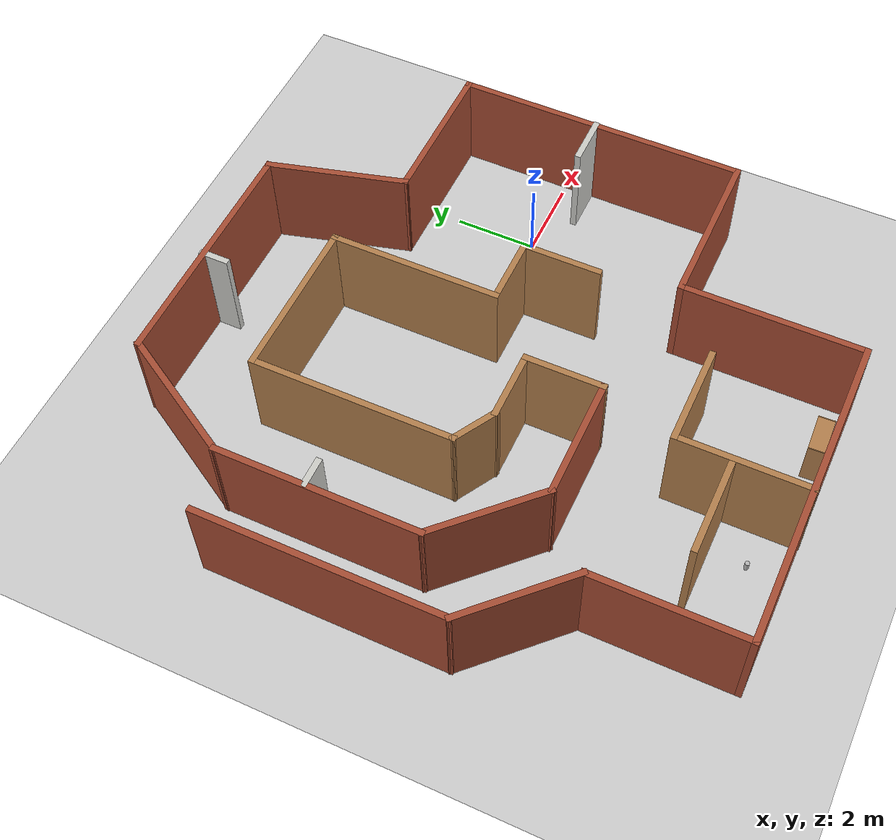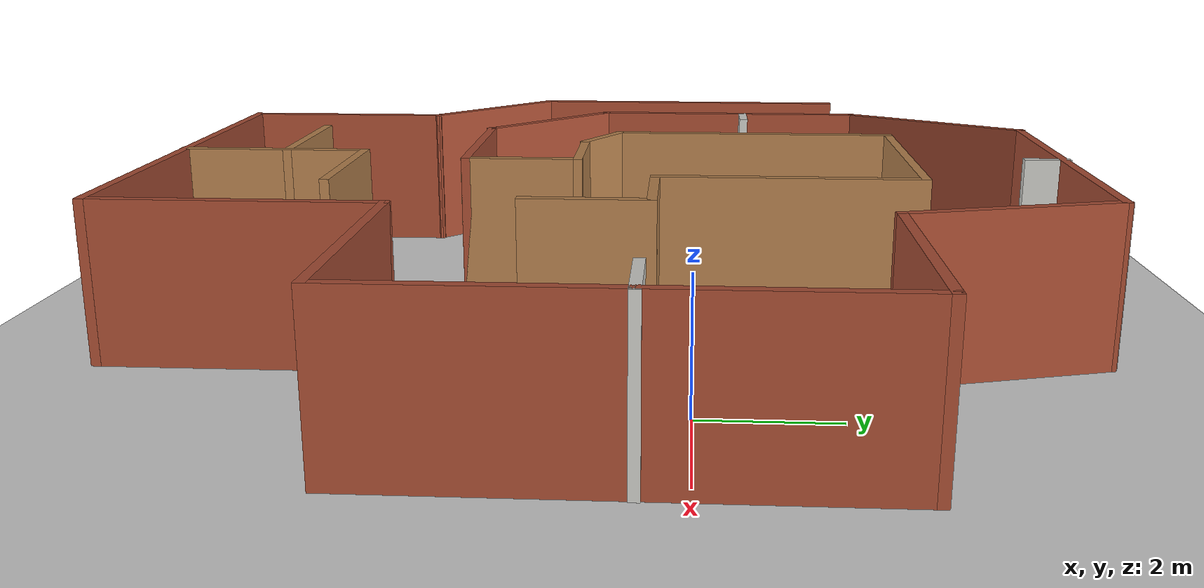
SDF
<sdf version="1.7">
 <world name="default">
  <light name="sun" type="directional">
   <pose>0 0 10 0 -0 0</pose>
   <diffuse>0.8 0.8 0.8 1</diffuse>
   <specular>0.2 0.2 0.2 1</specular>
   <attenuation>
    <range>1000</range>
    <constant>0.9</constant>
    <linear>0.01</linear>
    <quadratic>0.001</quadratic>
   </attenuation>
   <direction>-0.5 0.1 -0.9</direction>
   <spot><inner_angle>0</inner_angle><outer_angle>0</outer_angle><falloff>0</falloff></spot>
  </light>
  <model name="ground_plane">
   <static>1</static>
   <link name="link">
    <collision name="collision">
     <geometry><plane><normal>0 0 1</normal><size>100 100</size></plane></geometry>
     <surface>
      <contact><collide_bitmask>65535</collide_bitmask></contact>
      <friction><ode><mu>100</mu><mu2>50</mu2></ode></friction>
     </surface>
    </collision>
    <visual name="visual">
     <cast_shadows>0</cast_shadows>
     <geometry><plane><normal>0 0 1</normal><size>100 100</size></plane></geometry>
     <material>
      <script><uri>file://media/materials/scripts/gazebo.material</uri><name>Gazebo/Grey</name></script>
     </material>
    </visual>
   </link>
  </model>
  <gravity>0 0 -9.8</gravity>
  <magnetic_field>6e-06 2.3e-05 -4.2e-05</magnetic_field>
  <atmosphere type="adiabatic"/>
  <physics type="ode">
   <max_step_size>0.001</max_step_size>
   <real_time_factor>1</real_time_factor>
   <real_time_update_rate>1000</real_time_update_rate>
  </physics>
  <scene><ambient>0.4 0.4 0.4 1</ambient><background>0.7 0.7 0.7 1</background><shadows>1</shadows></scene>
  <spherical_coordinates>
   <surface_model>EARTH_WGS84</surface_model>
   <latitude_deg>0</latitude_deg>
   <longitude_deg>0</longitude_deg>
   <elevation>0</elevation>
   <heading_deg>0</heading_deg>
  </spherical_coordinates>
  <model name="my_map">
   <pose>-4.45693 -1.30853 0 0 -0 0</pose>
   <link name="Wall_0">
    <collision name="Wall_0_Collision">
     <geometry><box><size>4 0.15 2.5</size></box></geometry>
     <pose>0 0 1.25 0 -0 0</pose>
    </collision>
    <visual name="Wall_0_Visual">
     <pose>0 0 1.25 0 -0 0</pose>
     <geometry><box><size>4 0.15 2.5</size></box></geometry>
     <material>
      <script><uri>file://media/materials/scripts/gazebo.material</uri><name>Gazebo/Bricks</name></script>
      <ambient>0.760784 0.662745 0.627451 1</ambient>
     </material>
     <meta><layer>0</layer></meta>
    </visual>
    <pose>4.81193 -3.00147 0 0 -0 0</pose>
   </link>
   <link name="Wall_1">
    <collision name="Wall_1_Collision">
     <geometry><box><size>7.25 0.15 2.5</size></box></geometry>
     <pose>0 0 1.25 0 -0 0</pose>
    </collision>
    <visual name="Wall_1_Visual">
     <pose>0 0 1.25 0 -0 0</pose>
     <geometry><box><size>7.25 0.15 2.5</size></box></geometry>
     <material>
      <script><uri>file://media/materials/scripts/gazebo.material</uri><name>Gazebo/Bricks</name></script>
      <ambient>0.921569 0.807843 0.615686 1</ambient>
     </material>
     <meta><layer>0</layer></meta>
    </visual>
    <pose>6.73693 0.548534 0 0 -0 1.5708</pose>
   </link>
   <link name="Wall_10">
    <collision name="Wall_10_Collision">
     <geometry><box><size>1.75 0.15 2.5</size></box></geometry>
     <pose>0 0 1.25 0 -0 0</pose>
    </collision>
    <visual name="Wall_10_Visual">
     <pose>0 0 1.25 0 -0 0</pose>
     <geometry><box><size>1.75 0.15 2.5</size></box></geometry>
     <material>
      <script><uri>file://media/materials/scripts/gazebo.material</uri><name>Gazebo/Wood</name></script>
      <ambient>1 1 1 1</ambient>
     </material>
     <meta><layer>0</layer></meta>
    </visual>
    <pose>-1.18986 -0.582054 0 0 -0 3.14159</pose>
   </link>
   <link name="Wall_11">
    <collision name="Wall_11_Collision">
     <geometry><box><size>1.25 0.15 2.5</size></box></geometry>
     <pose>0 0 1.25 0 -0 0</pose>
    </collision>
    <visual name="Wall_11_Visual">
     <pose>0 0 1.25 0 -0 0</pose>
     <geometry><box><size>1.25 0.15 2.5</size></box></geometry>
     <material>
      <script><uri>file://media/materials/scripts/gazebo.material</uri><name>Gazebo/Wood</name></script>
      <ambient>1 1 1 1</ambient>
     </material>
     <meta><layer>0</layer></meta>
    </visual>
    <pose>-2.46618 -0.307054 0 0 -0 2.61799</pose>
   </link>
   <link name="Wall_12">
    <collision name="Wall_12_Collision">
     <geometry><box><size>5 0.15 2.5</size></box></geometry>
     <pose>0 0 1.25 0 -0 0</pose>
    </collision>
    <visual name="Wall_12_Visual">
     <pose>0 0 1.25 0 -0 0</pose>
     <geometry><box><size>5 0.15 2.5</size></box></geometry>
     <material>
      <script><uri>file://media/materials/scripts/gazebo.material</uri><name>Gazebo/Wood</name></script>
      <ambient>1 1 1 1</ambient>
     </material>
     <meta><layer>0</layer></meta>
    </visual>
    <pose>-2.94249 2.39295 0 0 -0 1.5708</pose>
   </link>
   <link name="Wall_13">
    <collision name="Wall_13_Collision">
     <geometry><box><size>4 0.15 2.5</size></box></geometry>
     <pose>0 0 1.25 0 -0 0</pose>
    </collision>
    <visual name="Wall_13_Visual">
     <pose>0 0 1.25 0 -0 0</pose>
     <geometry><box><size>4 0.15 2.5</size></box></geometry>
     <material>
      <script><uri>file://media/materials/scripts/gazebo.material</uri><name>Gazebo/Wood</name></script>
      <ambient>1 1 1 1</ambient>
     </material>
     <meta><layer>0</layer></meta>
    </visual>
    <pose>-1.01749 4.81795 0 0 -0 0</pose>
   </link>
   <link name="Wall_14">
    <collision name="Wall_14_Collision">
     <geometry><box><size>4.25 0.15 2.5</size></box></geometry>
     <pose>0 0 1.25 0 -0 0</pose>
    </collision>
    <visual name="Wall_14_Visual">
     <pose>0 0 1.25 0 -0 0</pose>
     <geometry><box><size>4.25 0.15 2.5</size></box></geometry>
     <material>
      <script><uri>file://media/materials/scripts/gazebo.material</uri><name>Gazebo/Wood</name></script>
      <ambient>1 1 1 1</ambient>
     </material>
     <meta><layer>0</layer></meta>
    </visual>
    <pose>0.907509 2.76795 0 0 -0 -1.5708</pose>
   </link>
   <link name="Wall_15">
    <collision name="Wall_15_Collision">
     <geometry><box><size>1.75 0.15 2.5</size></box></geometry>
     <pose>0 0 1.25 0 -0 0</pose>
    </collision>
    <visual name="Wall_15_Visual">
     <pose>0 0 1.25 0 -0 0</pose>
     <geometry><box><size>1.75 0.15 2.5</size></box></geometry>
     <material>
      <script><uri>file://media/materials/scripts/gazebo.material</uri><name>Gazebo/Wood</name></script>
      <ambient>1 1 1 1</ambient>
     </material>
     <meta><layer>0</layer></meta>
    </visual>
    <pose>1.70751 0.717946 0 0 -0 0</pose>
   </link>
   <link name="Wall_16">
    <collision name="Wall_16_Collision">
     <geometry><box><size>2 0.15 2.5</size></box></geometry>
     <pose>0 0 1.25 0 -0 0</pose>
    </collision>
    <visual name="Wall_16_Visual">
     <pose>0 0 1.25 0 -0 0</pose>
     <geometry><box><size>2 0.15 2.5</size></box></geometry>
     <material>
      <script><uri>file://media/materials/scripts/gazebo.material</uri><name>Gazebo/Wood</name></script>
      <ambient>1 1 1 1</ambient>
     </material>
     <meta><layer>0</layer></meta>
    </visual>
    <pose>2.50751 -0.207054 0 0 -0 -1.5708</pose>
   </link>
   <link name="Wall_2">
    <collision name="Wall_2_Collision">
     <geometry><box><size>3.75 0.15 2.5</size></box></geometry>
     <pose>0 0 1.25 0 -0 0</pose>
    </collision>
    <visual name="Wall_2_Visual">
     <pose>0 0 1.25 0 -0 0</pose>
     <geometry><box><size>3.75 0.15 2.5</size></box></geometry>
     <material>
      <script><uri>file://media/materials/scripts/gazebo.material</uri><name>Gazebo/Bricks</name></script>
      <ambient>0.760784 0.662745 0.627451 1</ambient>
     </material>
     <meta><layer>0</layer></meta>
    </visual>
    <pose>4.93693 4.09853 0 0 -0 3.14159</pose>
   </link>
   <link name="Wall_23">
    <collision name="Wall_23_Collision">
     <geometry><box><size>4.5 0.15 2.5</size></box></geometry>
     <pose>0 0 1.25 0 -0 0</pose>
    </collision>
    <visual name="Wall_23_Visual">
     <pose>0 0 1.25 0 -0 0</pose>
     <geometry><box><size>4.5 0.15 2.5</size></box></geometry>
     <material>
      <script><uri>file://media/materials/scripts/gazebo.material</uri><name>Gazebo/Bricks</name></script>
      <ambient>0.760784 0.662745 0.627451 1</ambient>
     </material>
     <meta><layer>0</layer></meta>
    </visual>
    <pose>2.88693 -5.17647 0 0 -0 -1.5708</pose>
   </link>
   <link name="Wall_24">
    <collision name="Wall_24_Collision">
     <geometry><box><size>7.75 0.15 2.5</size></box></geometry>
     <pose>0 0 1.25 0 -0 0</pose>
    </collision>
    <visual name="Wall_24_Visual">
     <pose>0 0 1.25 0 -0 0</pose>
     <geometry><box><size>7.75 0.15 2.5</size></box></geometry>
     <material>
      <script><uri>file://media/materials/scripts/gazebo.material</uri><name>Gazebo/Bricks</name></script>
      <ambient>0.760784 0.662745 0.627451 1</ambient>
     </material>
     <meta><layer>0</layer></meta>
    </visual>
    <pose>-0.913073 -7.35147 0 0 -0 3.14159</pose>
   </link>
   <link name="Wall_25">
    <collision name="Wall_25_Collision">
     <geometry><box><size>3.75 0.15 2.5</size></box></geometry>
     <pose>0 0 1.25 0 -0 0</pose>
    </collision>
    <visual name="Wall_25_Visual">
     <pose>0 0 1.25 0 -0 0</pose>
     <geometry><box><size>3.75 0.15 2.5</size></box></geometry>
     <material>
      <script><uri>file://media/materials/scripts/gazebo.material</uri><name>Gazebo/Bricks</name></script>
      <ambient>1 1 1 1</ambient>
     </material>
     <meta><layer>0</layer></meta>
    </visual>
    <pose>-4.71307 -5.55147 0 0 -0 1.5708</pose>
   </link>
   <link name="Wall_26">
    <collision name="Wall_26_Collision">
     <geometry><box><size>3 0.15 2.5</size></box></geometry>
     <pose>0 0 1.25 0 -0 0</pose>
    </collision>
    <visual name="Wall_26_Visual">
     <pose>0 0 1.25 0 -0 0</pose>
     <geometry><box><size>3 0.15 2.5</size></box></geometry>
     <material>
      <script><uri>file://media/materials/scripts/gazebo.material</uri><name>Gazebo/Bricks</name></script>
      <ambient>0.760784 0.662745 0.627451 1</ambient>
     </material>
     <meta><layer>0</layer></meta>
    </visual>
    <pose>-5.7207 -2.74384 0 0 -0 2.35619</pose>
   </link>
   <link name="Wall_27">
    <collision name="Wall_27_Collision">
     <geometry><box><size>6 0.15 2.5</size></box></geometry>
     <pose>0 0 1.25 0 -0 0</pose>
    </collision>
    <visual name="Wall_27_Visual">
     <pose>0 0 1.25 0 -0 0</pose>
     <geometry><box><size>6 0.15 2.5</size></box></geometry>
     <material>
      <script><uri>file://media/materials/scripts/gazebo.material</uri><name>Gazebo/Bricks</name></script>
      <ambient>0.760784 0.662745 0.627451 1</ambient>
     </material>
     <meta><layer>0</layer></meta>
    </visual>
    <pose>-6.72833 1.18879 0 0 -0 1.5708</pose>
   </link>
   <link name="Wall_29">
    <collision name="Wall_29_Collision">
     <geometry><box><size>3.25 0.15 2.5</size></box></geometry>
     <pose>0 0 1.25 0 -0 0</pose>
    </collision>
    <visual name="Wall_29_Visual">
     <pose>0 0 1.25 0 -0 0</pose>
     <geometry><box><size>3.25 0.15 2.5</size></box></geometry>
     <material>
      <script><uri>file://media/materials/scripts/gazebo.material</uri><name>Gazebo/Wood</name></script>
      <ambient>1 1 1 1</ambient>
     </material>
     <meta><layer>0</layer></meta>
    </visual>
    <pose>-0.954663 -5.817 0 0 -0 1.5708</pose>
   </link>
   <link name="Wall_3">
    <collision name="Wall_3_Collision">
     <geometry><box><size>3.5 0.15 2.5</size></box></geometry>
     <pose>0 0 1.25 0 -0 0</pose>
    </collision>
    <visual name="Wall_3_Visual">
     <pose>0 0 1.25 0 -0 0</pose>
     <geometry><box><size>3.5 0.15 2.5</size></box></geometry>
     <material>
      <script><uri>file://media/materials/scripts/gazebo.material</uri><name>Gazebo/Bricks</name></script>
      <ambient>0.760784 0.662745 0.627451 1</ambient>
     </material>
     <meta><layer>0</layer></meta>
    </visual>
    <pose>2.70341 5.71646 0 0 -0 1.8326</pose>
   </link>
   <link name="Wall_30">
    <collision name="Wall_30_Collision">
     <geometry><box><size>2.5 0.15 2.5</size></box></geometry>
     <pose>0 0 1.25 0 -0 0</pose>
    </collision>
    <visual name="Wall_30_Visual">
     <pose>0 0 1.25 0 -0 0</pose>
     <geometry><box><size>2.5 0.15 2.5</size></box></geometry>
     <material>
      <script><uri>file://media/materials/scripts/gazebo.material</uri><name>Gazebo/Wood</name></script>
      <ambient>1 1 1 1</ambient>
     </material>
     <meta><layer>0</layer></meta>
    </visual>
    <pose>0.220336 -4.26699 0 0 -0 0</pose>
   </link>
   <link name="Wall_32">
    <collision name="Wall_32_Collision">
     <geometry><box><size>2.5 0.15 2.5</size></box></geometry>
     <pose>0 0 1.25 0 -0 0</pose>
    </collision>
    <visual name="Wall_32_Visual">
     <pose>0 0 1.25 0 -0 0</pose>
     <geometry><box><size>2.5 0.15 2.5</size></box></geometry>
     <material>
      <script><uri>file://media/materials/scripts/gazebo.material</uri><name>Gazebo/Wood</name></script>
      <ambient>1 1 1 1</ambient>
     </material>
     <meta><layer>0</layer></meta>
    </visual>
    <pose>-2.12966 -5.58478 0 0 -0 3.14159</pose>
   </link>
   <link name="Wall_34">
    <collision name="Wall_34_Collision">
     <geometry><box><size>1.25 0.15 2.5</size></box></geometry>
     <pose>0 0 1.25 0 -0 0</pose>
    </collision>
    <visual name="Wall_34_Visual">
     <pose>0 0 1.25 0 -0 0</pose>
     <geometry><box><size>1.25 0.15 2.5</size></box></geometry>
     <material>
      <script><uri>file://media/materials/scripts/gazebo.material</uri><name>Gazebo/CeilingTiled</name></script>
      <ambient>1 0.764706 0.305882 1</ambient>
     </material>
     <meta><layer>0</layer></meta>
    </visual>
    <pose>6.20939 0.666265 0 0 -0 3.14159</pose>
   </link>
   <link name="Wall_36">
    <collision name="Wall_36_Collision">
     <geometry><box><size>0.75 0.15 2.5</size></box></geometry>
     <pose>0 0 1.25 0 -0 0</pose>
    </collision>
    <visual name="Wall_36_Visual">
     <pose>0 0 1.25 0 -0 0</pose>
     <geometry><box><size>0.75 0.15 2.5</size></box></geometry>
     <material>
      <script><uri>file://media/materials/scripts/gazebo.material</uri><name>Gazebo/CeilingTiled</name></script>
      <ambient>1 0.764706 0.305882 1</ambient>
     </material>
     <meta><layer>0</layer></meta>
    </visual>
    <pose>-0.762589 7.067 0 0 -0 -1.5708</pose>
   </link>
   <link name="Wall_38">
    <collision name="Wall_38_Collision">
     <geometry><box><size>0.75 0.15 2.5</size></box></geometry>
     <pose>0 0 1.25 0 -0 0</pose>
    </collision>
    <visual name="Wall_38_Visual">
     <pose>0 0 1.25 0 -0 0</pose>
     <geometry><box><size>0.75 0.15 2.5</size></box></geometry>
     <material>
      <script><uri>file://media/materials/scripts/gazebo.material</uri><name>Gazebo/CeilingTiled</name></script>
      <ambient>1 0.764706 0.305882 1</ambient>
     </material>
     <meta><layer>0</layer></meta>
    </visual>
    <pose>-4.93142 2.28636 0 0 -0 0</pose>
   </link>
   <link name="Wall_4">
    <collision name="Wall_4_Collision">
     <geometry><box><size>6 0.15 2.5</size></box></geometry>
     <pose>0 0 1.25 0 -0 0</pose>
    </collision>
    <visual name="Wall_4_Visual">
     <pose>0 0 1.25 0 -0 0</pose>
     <geometry><box><size>6 0.15 2.5</size></box></geometry>
     <material>
      <script><uri>file://media/materials/scripts/gazebo.material</uri><name>Gazebo/Bricks</name></script>
      <ambient>0.921569 0.807843 0.615686 1</ambient>
     </material>
     <meta><layer>0</layer></meta>
    </visual>
    <pose>-0.655117 7.33439 0 0 -0 3.14159</pose>
   </link>
   <link name="Wall_5">
    <collision name="Wall_5_Collision">
     <geometry><box><size>3.5 0.15 2.5</size></box></geometry>
     <pose>0 0 1.25 0 -0 0</pose>
    </collision>
    <visual name="Wall_5_Visual">
     <pose>0 0 1.25 0 -0 0</pose>
     <geometry><box><size>3.5 0.15 2.5</size></box></geometry>
     <material>
      <script><uri>file://media/materials/scripts/gazebo.material</uri><name>Gazebo/Bricks</name></script>
      <ambient>1 1 1 1</ambient>
     </material>
     <meta><layer>0</layer></meta>
    </visual>
    <pose>-4.41762 5.88379 0 0 -0 -2.0944</pose>
   </link>
   <link name="Wall_6">
    <collision name="Wall_6_Collision">
     <geometry><box><size>5 0.15 2.5</size></box></geometry>
     <pose>0 0 1.25 0 -0 0</pose>
    </collision>
    <visual name="Wall_6_Visual">
     <pose>0 0 1.25 0 -0 0</pose>
     <geometry><box><size>5 0.15 2.5</size></box></geometry>
     <material>
      <script><uri>file://media/materials/scripts/gazebo.material</uri><name>Gazebo/Bricks</name></script>
      <ambient>0.760784 0.662745 0.627451 1</ambient>
     </material>
     <meta><layer>0</layer></meta>
    </visual>
    <pose>-5.25512 2.0082 0 0 -0 -1.5708</pose>
   </link>
   <link name="Wall_7">
    <collision name="Wall_7_Collision">
     <geometry><box><size>3 0.15 2.5</size></box></geometry>
     <pose>0 0 1.25 0 -0 0</pose>
    </collision>
    <visual name="Wall_7_Visual">
     <pose>0 0 1.25 0 -0 0</pose>
     <geometry><box><size>3 0.15 2.5</size></box></geometry>
     <material>
      <script><uri>file://media/materials/scripts/gazebo.material</uri><name>Gazebo/Bricks</name></script>
      <ambient>1 1 1 1</ambient>
     </material>
     <meta><layer>0</layer></meta>
    </visual>
    <pose>-4.24749 -1.42443 0 0 -0 -0.785398</pose>
   </link>
   <link name="Wall_8">
    <collision name="Wall_8_Collision">
     <geometry><box><size>3 0.15 2.5</size></box></geometry>
     <pose>0 0 1.25 0 -0 0</pose>
    </collision>
    <visual name="Wall_8_Visual">
     <pose>0 0 1.25 0 -0 0</pose>
     <geometry><box><size>3 0.15 2.5</size></box></geometry>
     <material>
      <script><uri>file://media/materials/scripts/gazebo.material</uri><name>Gazebo/Bricks</name></script>
      <ambient>0.760784 0.662745 0.627451 1</ambient>
     </material>
     <meta><layer>0</layer></meta>
    </visual>
    <pose>-1.81486 -2.43205 0 0 -0 0</pose>
   </link>
   <link name="Wall_9">
    <collision name="Wall_9_Collision">
     <geometry><box><size>2 0.15 2.5</size></box></geometry>
     <pose>0 0 1.25 0 -0 0</pose>
    </collision>
    <visual name="Wall_9_Visual">
     <pose>0 0 1.25 0 -0 0</pose>
     <geometry><box><size>2 0.15 2.5</size></box></geometry>
     <material>
      <script><uri>file://media/materials/scripts/gazebo.material</uri><name>Gazebo/Wood</name></script>
      <ambient>1 1 1 1</ambient>
     </material>
     <meta><layer>0</layer></meta>
    </visual>
    <pose>-0.389863 -1.50705 0 0 -0 1.5708</pose>
   </link>
   <static>1</static>
  </model>
  <light name="user_point_light_0" type="point">
   <pose>-2.77833 -1.14103 1 0 -0 0</pose>
   <diffuse>0.5 0.5 0.5 1</diffuse>
   <specular>0.1 0.1 0.1 1</specular>
   <attenuation>
    <range>20</range>
    <constant>0.5</constant>
    <linear>0.01</linear>
    <quadratic>0.001</quadratic>
   </attenuation>
   <cast_shadows>0</cast_shadows>
   <direction>0 0 -1</direction>
  </light>
  <model name="bookshelf">
   <static>1</static>
   <link name="link">
    <inertial><mass>1</mass></inertial>
    <collision name="back">
     <pose>0 0.005 0.6 0 -0 0</pose>
     <geometry><box><size>0.9 0.01 1.2</size></box></geometry>
    </collision>
    <visual name="visual1">
     <pose>0 0.005 0.6 0 -0 0</pose>
     <geometry><box><size>0.9 0.01 1.2</size></box></geometry>
     <material>
      <script><uri>file://media/materials/scripts/gazebo.material</uri><name>Gazebo/Wood</name></script>
     </material>
    </visual>
    <collision name="left_side">
     <pose>0.45 -0.195 0.6 0 -0 0</pose>
     <geometry><box><size>0.02 0.4 1.2</size></box></geometry>
    </collision>
    <visual name="visual2">
     <pose>0.45 -0.195 0.6 0 -0 0</pose>
     <geometry><box><size>0.02 0.4 1.2</size></box></geometry>
     <material>
      <script><uri>file://media/materials/scripts/gazebo.material</uri><name>Gazebo/Wood</name></script>
     </material>
    </visual>
    <collision name="right_side">
     <pose>-0.45 -0.195 0.6 0 -0 0</pose>
     <geometry><box><size>0.02 0.4 1.2</size></box></geometry>
    </collision>
    <visual name="visual3">
     <pose>-0.45 -0.195 0.6 0 -0 0</pose>
     <geometry><box><size>0.02 0.4 1.2</size></box></geometry>
     <material>
      <script><uri>file://media/materials/scripts/gazebo.material</uri><name>Gazebo/Wood</name></script>
     </material>
    </visual>
    <collision name="bottom">
     <pose>0 -0.195 0.03 0 -0 0</pose>
     <geometry><box><size>0.88 0.4 0.06</size></box></geometry>
    </collision>
    <visual name="visual4">
     <pose>0 -0.195 0.03 0 -0 0</pose>
     <geometry><box><size>0.88 0.4 0.06</size></box></geometry>
     <material>
      <script><uri>file://media/materials/scripts/gazebo.material</uri><name>Gazebo/Wood</name></script>
     </material>
    </visual>
    <collision name="top">
     <pose>0 -0.195 1.19 0 -0 0</pose>
     <geometry><box><size>0.88 0.4 0.02</size></box></geometry>
    </collision>
    <visual name="visual5">
     <pose>0 -0.195 1.19 0 -0 0</pose>
     <geometry><box><size>0.88 0.4 0.02</size></box></geometry>
     <material>
      <script><uri>file://media/materials/scripts/gazebo.material</uri><name>Gazebo/Wood</name></script>
     </material>
    </visual>
    <collision name="low_shelf">
     <pose>0 -0.195 0.43 0 -0 0</pose>
     <geometry><box><size>0.88 0.4 0.02</size></box></geometry>
    </collision>
    <visual name="visual6">
     <pose>0 -0.195 0.43 0 -0 0</pose>
     <geometry><box><size>0.88 0.4 0.02</size></box></geometry>
     <material>
      <script><uri>file://media/materials/scripts/gazebo.material</uri><name>Gazebo/Wood</name></script>
     </material>
    </visual>
    <collision name="high_shelf">
     <pose>0 -0.195 0.8 0 -0 0</pose>
     <geometry><box><size>0.88 0.4 0.02</size></box></geometry>
    </collision>
    <visual name="visual7">
     <pose>0 -0.195 0.8 0 -0 0</pose>
     <geometry><box><size>0.88 0.4 0.02</size></box></geometry>
     <material>
      <script><uri>file://media/materials/scripts/gazebo.material</uri><name>Gazebo/Wood</name></script>
     </material>
    </visual>
   </link>
   <pose>-3.17251 -8.55423 0 0 0 -3.10084</pose>
  </model>
  <model name="beer">
   <link name="link">
    <pose>0 0 0.115 0 -0 0</pose>
    <inertial>
     <mass>0.39</mass>
     <inertia><ixx>0.00058</ixx><ixy>0</ixy><ixz>0</ixz><iyy>0.00058</iyy><iyz>0</iyz><izz>0.00019</izz></inertia>
    </inertial>
    <collision name="collision">
     <geometry><cylinder><radius>0.055</radius><length>0.23</length></cylinder></geometry>
    </collision>
    <visual name="visual">
     <geometry><cylinder><radius>0.055</radius><length>0.23</length></cylinder></geometry>
     <material>
      <script>
       <uri>model://beer/materials/scripts</uri>
       <uri>model://beer/materials/textures</uri>
       <name>Beer/Diffuse</name>
      </script>
     </material>
    </visual>
   </link>
   <pose>-6.36072 -7.85023 0 0 -0 0</pose>
  </model>
  <light name="user_point_light_1" type="point">
   <pose>-4.07472 -0.482737 1 0 -0 0</pose>
   <diffuse>0.5 0.5 0.5 1</diffuse>
   <specular>0.1 0.1 0.1 1</specular>
   <attenuation>
    <range>20</range>
    <constant>0.5</constant>
    <linear>0.01</linear>
    <quadratic>0.001</quadratic>
   </attenuation>
   <cast_shadows>0</cast_shadows>
   <direction>0 0 -1</direction>
  </light>
 </world>
</sdf>
